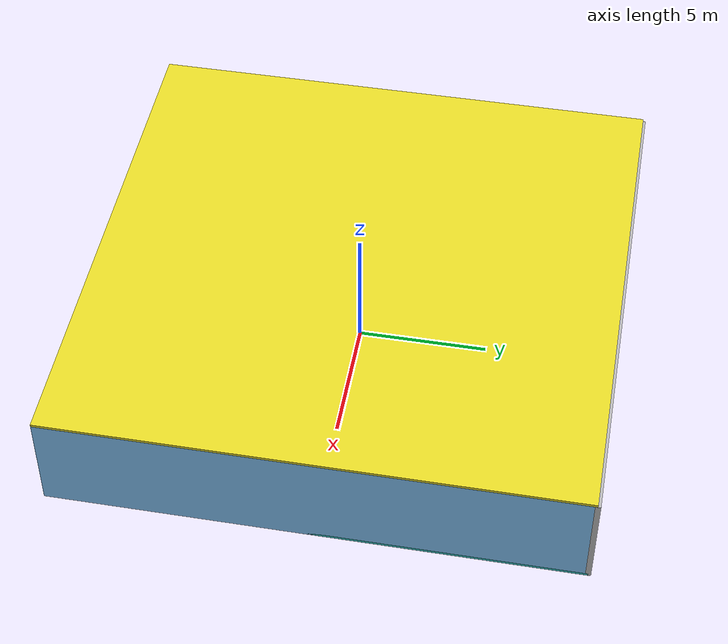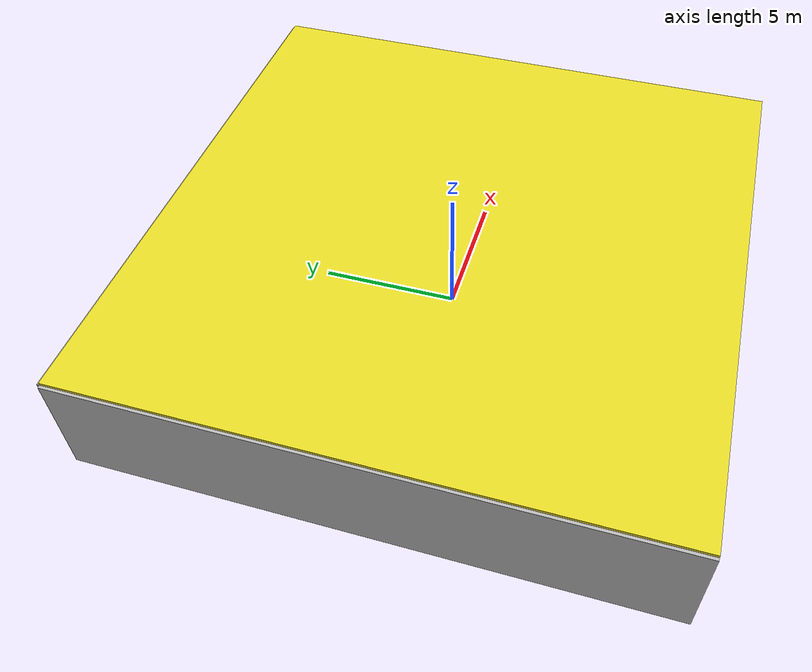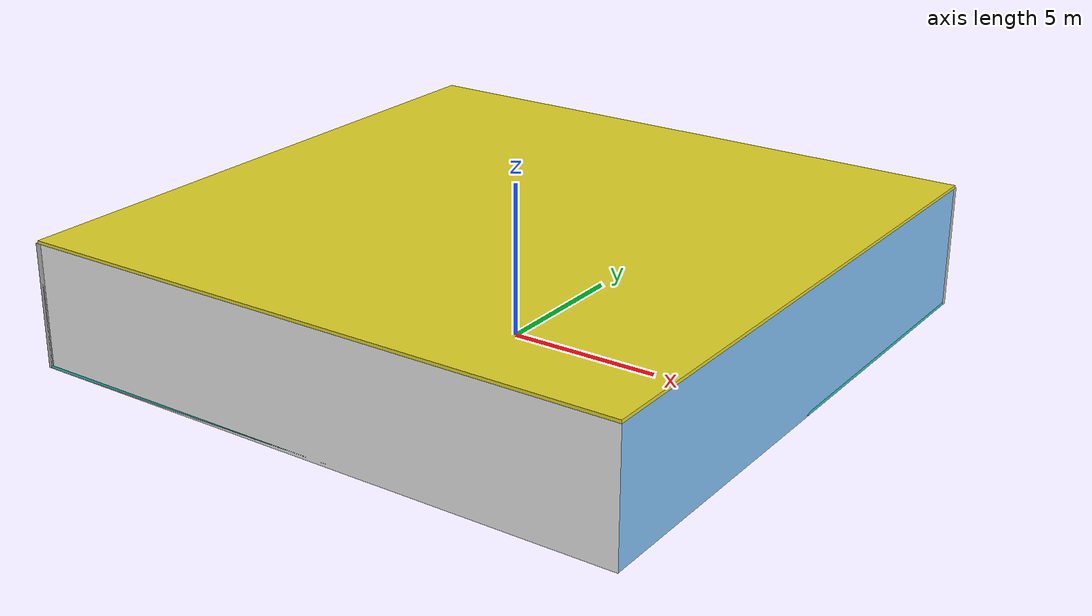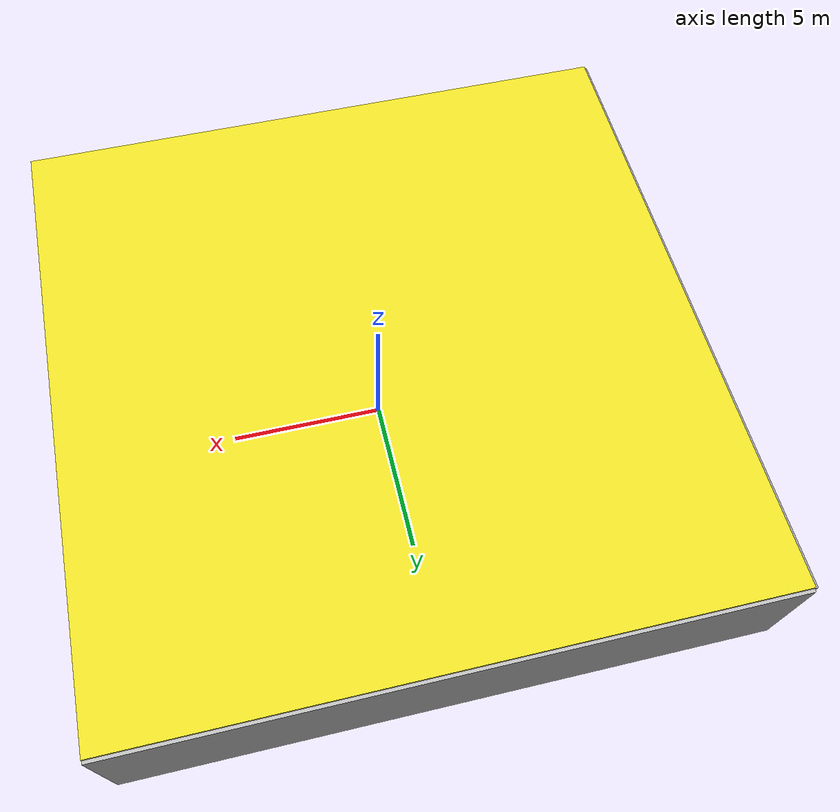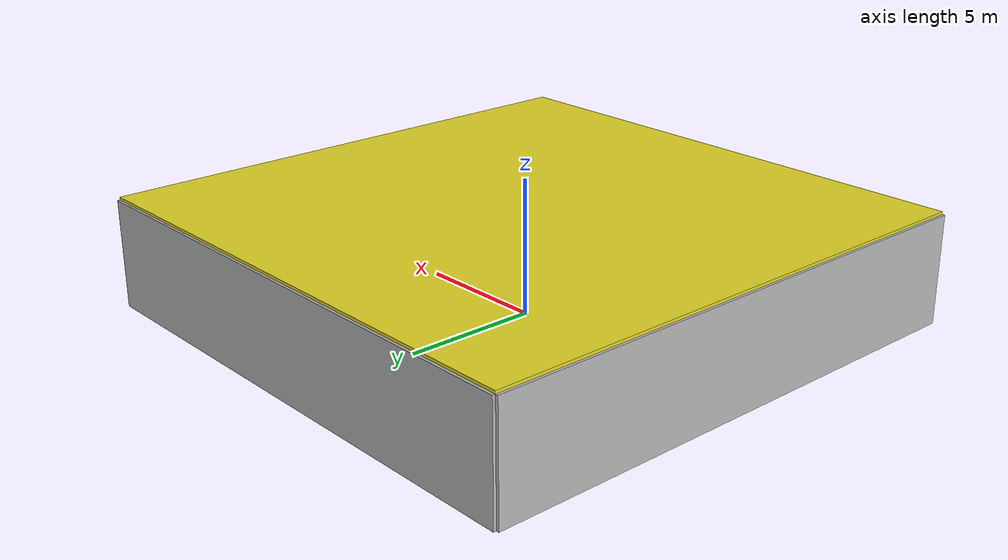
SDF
<sdf version="1.4">
 <world name="default">
  <physics type="ode">
   <max_step_size>0.001</max_step_size>
   <real_time_factor>1</real_time_factor>
   <real_time_update_rate>1000</real_time_update_rate>
   <gravity>0 0 -9.8</gravity>
  </physics>
  <scene><ambient>0.4 0.4 0.4 1</ambient><background>0.7 0.7 0.7 1</background><shadows>1</shadows></scene>
  <model name="Surrounding">
   <static>1</static>
   <link name="Ceiling">
    <collision name="Ceiling_Collision"><geometry><box><size>20 20 0.1</size></box></geometry></collision>
    <visual name="Ceiling_Visual">
     <geometry><box><size>20 20 0.1</size></box></geometry>
     <material>
      <script><uri>file://media/materials/scripts/gazebo.material</uri><name>Gazebo/Yellow</name></script>
     </material>
    </visual>
    <pose>0 0 4.05 0 0 0</pose>
   </link>
   <link name="Wall_South">
    <collision name="Wall_South_Collision">
     <geometry><box><size>20 0 4</size></box></geometry>
     <pose>0 0 2 0 -0 0</pose>
    </collision>
    <visual name="Wall_South_Visual">
     <pose>0 0 2 0 -0 0</pose>
     <geometry><box><size>20 0 4</size></box></geometry>
     <material>
      <script><uri>file://media/materials/scripts/gazebo.material</uri><name>Gazebo/WhiteGlow</name></script>
     </material>
    </visual>
    <velocity_decay><linear>0</linear><angular>0</angular></velocity_decay>
    <pose>0 -10 0 0 -0 0</pose>
   </link>
   <link name="Wall_East">
    <collision name="Wall_21_Collision">
     <geometry><box><size>20 0 4</size></box></geometry>
     <pose>0 0 2 0 -0 0</pose>
    </collision>
    <visual name="Wall_21_Visual">
     <pose>0 0 2 0 -0 0</pose>
     <geometry><box><size>20 0 4</size></box></geometry>
     <material>
      <script><uri>file://media/materials/scripts/gazebo.material</uri><name>Gazebo/SkyBlue</name></script>
     </material>
    </visual>
    <velocity_decay><linear>0</linear><angular>0</angular></velocity_decay>
    <pose>10 0 0 0 -0 1.5708</pose>
   </link>
   <link name="Wall_North">
    <collision name="Wall_22_Collision">
     <geometry><box><size>20 0.2 4</size></box></geometry>
     <pose>0 0 2 0 -0 0</pose>
    </collision>
    <visual name="Wall_22_Visual">
     <pose>0 0 2 0 -0 0</pose>
     <geometry><box><size>20 0.2 4</size></box></geometry>
     <material>
      <script><uri>file://media/materials/scripts/gazebo.material</uri><name>Gazebo/PioneerBody</name></script>
     </material>
    </visual>
    <velocity_decay><linear>0</linear><angular>0</angular></velocity_decay>
    <pose>0 10 0 0 -0 0</pose>
   </link>
   <link name="Wall_West">
    <collision name="Wall_23_Collision">
     <geometry><box><size>20 0.2 4</size></box></geometry>
     <pose>0 0 2 0 -0 0</pose>
    </collision>
    <visual name="Wall_23_Visual">
     <pose>0 0 2 0 -0 0</pose>
     <geometry><box><size>20 0.2 4</size></box></geometry>
     <material>
      <script><uri>file://media/materials/scripts/gazebo.material</uri><name>Gazebo/PioneerBody</name></script>
     </material>
    </visual>
    <velocity_decay><linear>0</linear><angular>0</angular></velocity_decay>
    <pose>-10 0 0 0 0 -1.5708</pose>
   </link>
   <link name="Ground_link">
    <collision name="collision">
     <pose>0 0 .05 0 -0 0</pose>
     <geometry><box><size>20 20 0.1</size></box></geometry>
    </collision>
    <visual name="visual">
     <pose>0 0 .05 0 -0 0</pose>
     <geometry><box><size>20 20 0.1</size></box></geometry>
     <material>
      <script>
       <uri>file://media/materials/scripts/gazebo.material</uri>
       <name>Gazebo/TurquoiseGlowOutline</name>
      </script>
     </material>
    </visual>
   </link>
   <static>1</static>
  </model>
  <spherical_coordinates>
   <surface_model>EARTH_WGS84</surface_model>
   <latitude_deg>0</latitude_deg>
   <longitude_deg>0</longitude_deg>
   <elevation>0</elevation>
   <heading_deg>0</heading_deg>
  </spherical_coordinates>
  <light name="lightball_0" type="diffuse">
   <diffuse>0.8 0.8 0.8 1</diffuse>
   <specular>0.2 0.2 0.2 1</specular>
   <attenuation>
    <range>100</range>
    <constant>0.7</constant>
    <linear>0.01</linear>
    <quadratic>0.001</quadratic>
   </attenuation>
   <direction>-0.5 0.1 -0.9</direction>
   <pose>8.34610237616 -8.17660689173 2.33584780701 0 0 0</pose>
  </light>
  <light name="lightball_1" type="diffuse">
   <diffuse>0.8 0.8 0.8 1</diffuse>
   <specular>0.2 0.2 0.2 1</specular>
   <attenuation>
    <range>100</range>
    <constant>0.7</constant>
    <linear>0.01</linear>
    <quadratic>0.001</quadratic>
   </attenuation>
   <direction>-0.5 0.1 -0.9</direction>
   <pose>5.45394741473 6.502412956 3.05142212609 0 0 0</pose>
  </light>
  <light name="lightball_2" type="diffuse">
   <diffuse>0.8 0.8 0.8 1</diffuse>
   <specular>0.2 0.2 0.2 1</specular>
   <attenuation>
    <range>100</range>
    <constant>0.7</constant>
    <linear>0.01</linear>
    <quadratic>0.001</quadratic>
   </attenuation>
   <direction>-0.5 0.1 -0.9</direction>
   <pose>-2.94794567851 -0.0819799897336 2.86329132359 0 0 0</pose>
  </light>
  <include><uri>model://table</uri><pose>-6.72011983329 -4.6516418675 0 0 0 0.675100033976</pose></include>
  <include><uri>model://cabinet</uri><pose>4.32527974502 -8.06060282027 0 0 0 2.61453169371</pose></include>
  <include><uri>model://table</uri><pose>6.961094983 -1.99934678486 0 0 0 0.15113074989</pose></include>
 </world>
</sdf>

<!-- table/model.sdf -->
<sdf version="1.5">
  <model name="table">
    <static>true</static>
    <link name="link">
      <collision name="surface">
        <pose>0 0 1.0 0 0 0</pose>
        <geometry>
          <box>
            <size>1.5 0.8 0.03</size>
          </box>
        </geometry>
        <surface>
          <friction>
            <ode>
              <mu>0.6</mu>
              <mu2>0.6</mu2>
            </ode>
          </friction>
        </surface>
      </collision>
      <visual name="visual1">
        <pose>0 0 1.0 0 0 0</pose>
        <geometry>
          <box>
            <size>1.5 0.8 0.03</size>
          </box>
        </geometry>
        <material>
          <script>
            <uri>model://media/materials/scripts/gazebo.material</uri>
            <name>Gazebo/Wood</name>
          </script>
        </material>
      </visual>
      <collision name="front_left_leg">
        <pose>0.68 0.38 0.5 0 0 0</pose>
        <geometry>
          <cylinder>
            <radius>0.02</radius>
            <length>1.0</length>
          </cylinder>
        </geometry>
      </collision>
      <visual name="front_left_leg">
        <pose>0.68 0.38 0.5 0 0 0</pose>
        <geometry>
          <cylinder>
            <radius>0.02</radius>
            <length>1.0</length>
          </cylinder>
        </geometry>
        <material>
          <script>
            <uri>model://media/materials/scripts/gazebo.material</uri>
            <name>Gazebo/Grey</name>
          </script>
        </material>
      </visual>
      <collision name="front_right_leg">
        <pose>0.68 -0.38 0.5 0 0 0</pose>
        <geometry>
          <cylinder>
            <radius>0.02</radius>
            <length>1.0</length>
          </cylinder>
        </geometry>
      </collision>
      <visual name="front_right_leg">
        <pose>0.68 -0.38 0.5 0 0 0</pose>
        <geometry>
          <cylinder>
            <radius>0.02</radius>
            <length>1.0</length>
          </cylinder>
        </geometry>
        <material>
          <script>
            <uri>model://media/materials/scripts/gazebo.material</uri>
            <name>Gazebo/Grey</name>
          </script>
        </material>
      </visual>
      <collision name="back_right_leg">
        <pose>-0.68 -0.38 0.5 0 0 0</pose>
        <geometry>
          <cylinder>
            <radius>0.02</radius>
            <length>1.0</length>
          </cylinder>
        </geometry>
      </collision>
      <visual name="back_right_leg">
        <pose>-0.68 -0.38 0.5 0 0 0</pose>
        <geometry>
          <cylinder>
            <radius>0.02</radius>
            <length>1.0</length>
          </cylinder>
        </geometry>
        <material>
          <script>
            <uri>model://media/materials/scripts/gazebo.material</uri>
            <name>Gazebo/Grey</name>
          </script>
        </material>
      </visual>
      <collision name="back_left_leg">
        <pose>-0.68 0.38 0.5 0 0 0</pose>
        <geometry>
          <cylinder>
            <radius>0.02</radius>
            <length>1.0</length>
          </cylinder>
        </geometry>
      </collision>
      <visual name="back_left_leg">
        <pose>-0.68 0.38 0.5 0 0 0</pose>
        <geometry>
          <cylinder>
            <radius>0.02</radius>
            <length>1.0</length>
          </cylinder>
        </geometry>
        <material>
          <script>
            <uri>model://media/materials/scripts/gazebo.material</uri>
            <name>Gazebo/Grey</name>
          </script>
        </material>
      </visual>
    </link>
  </model>
</sdf>

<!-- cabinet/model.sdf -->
<sdf version="1.5">
  <model name="cabinet">
    <static>true</static>
    <link name="cabinet_bottom_plate">
      <inertial>
        <pose>0 0 -1 0 0 0</pose>
        <inertia>
          <ixx>2.050000</ixx>
          <ixy>0</ixy>
          <ixz>0</ixz>
          <iyy>2.050000</iyy>
          <iyz>0</iyz>
          <izz>2.050000</izz>
        </inertia>
        <mass>25.000000</mass>
      </inertial>
      <collision name="cabinet_bottom_plate_geom">
        <pose>0 0 0.010000 0 0 0</pose>
        <geometry>
          <box>
            <size>0.450000 0.450000 0.020000</size>
          </box>
        </geometry>
      </collision>
      <visual name="cabinet_bottom_plate_geom_visual">
        <pose>0 0 0.010000 0 0 0</pose>
        <geometry>
          <box>
            <size>0.450000 0.450000 0.020000</size>
          </box>
        </geometry>
        <material>
          <script>
            <uri>model://media/materials/scripts/gazebo.material</uri>
            <name>Gazebo/Wood</name>
          </script>
        </material>
      </visual>
      <collision name="cabinet_bottom_plate_geom_cabinet_back_plate">
        <pose>0.235000 0 0.510000 0 0 0</pose>
        <geometry>
          <box>
            <size>0.020000 0.450000 1.020000</size>
          </box>
        </geometry>
      </collision>
      <visual name="cabinet_bottom_plate_geom_cabinet_back_plate_visual">
        <pose>0.235000 0 0.510000 0 0 0</pose>
        <geometry>
          <box>
            <size>0.020000 0.450000 1.020000</size>
          </box>
        </geometry>
        <material>
          <script>
            <uri>model://media/materials/scripts/gazebo.material</uri>
            <name>Gazebo/Wood</name>
          </script>
        </material>
      </visual>
      <collision name="cabinet_bottom_plate_geom_cabinet_left_plate">
        <pose>0 0.235000 0.510000 0 0 0</pose>
        <geometry>
          <box>
            <size>0.450000 0.020000 1.020000</size>
          </box>
        </geometry>
      </collision>
      <visual name="cabinet_bottom_plate_geom_cabinet_left_plate_visual">
        <pose>0 0.235000 0.510000 0 0 0</pose>
        <geometry>
          <box>
            <size>0.450000 0.020000 1.020000</size>
          </box>
        </geometry>
        <material>
          <script>
            <uri>model://media/materials/scripts/gazebo.material</uri>
            <name>Gazebo/Wood</name>
          </script>
        </material>
      </visual>
      <collision name="cabinet_bottom_plate_geom_cabinet_middle_plate">
        <pose>0 0 0.510000 0 0 0</pose>
        <geometry>
          <box>
            <size>0.450000 0.450000 0.020000</size>
          </box>
        </geometry>
      </collision>
      <visual name="cabinet_bottom_plate_geom_cabinet_middle_plate_visual">
        <pose>0 0 0.510000 0 0 0</pose>
        <geometry>
          <box>
            <size>0.450000 0.450000 0.020000</size>
          </box>
        </geometry>
        <material>
          <script>
            <uri>model://media/materials/scripts/gazebo.material</uri>
            <name>Gazebo/Wood</name>
          </script>
        </material>
      </visual>
      <collision name="cabinet_bottom_plate_geom_cabinet_right_plate">
        <pose>0 -0.235000 0.510000 0 0 0</pose>
        <geometry>
          <box>
            <size>0.450000 0.020000 1.020000</size>
          </box>
        </geometry>
      </collision>
      <visual name="cabinet_bottom_plate_geom_cabinet_right_plate_visual">
        <pose>0 -0.235000 0.510000 0 0 0</pose>
        <geometry>
          <box>
            <size>0.450000 0.020000 1.020000</size>
          </box>
        </geometry>
        <material>
          <script>
            <uri>model://media/materials/scripts/gazebo.material</uri>
            <name>Gazebo/Wood</name>
          </script>
        </material>
      </visual>
      <collision name="cabinet_bottom_plate_geom_cabinet_top_plate">
        <pose>0 0 1.010000 0 0 0</pose>
        <geometry>
          <box>
            <size>0.450000 0.450000 0.020000</size>
          </box>
        </geometry>
      </collision>
      <visual name="cabinet_bottom_plate_geom_cabinet_top_plate_visual">
        <pose>0 0 1.010000 0 0 0</pose>
        <geometry>
          <box>
            <size>0.450000 0.450000 0.020000</size>
          </box>
        </geometry>
        <material>
          <script>
            <uri>model://media/materials/scripts/gazebo.material</uri>
            <name>Gazebo/Wood</name>
          </script>
        </material>
      </visual>
    </link>
  </model>
</sdf>
